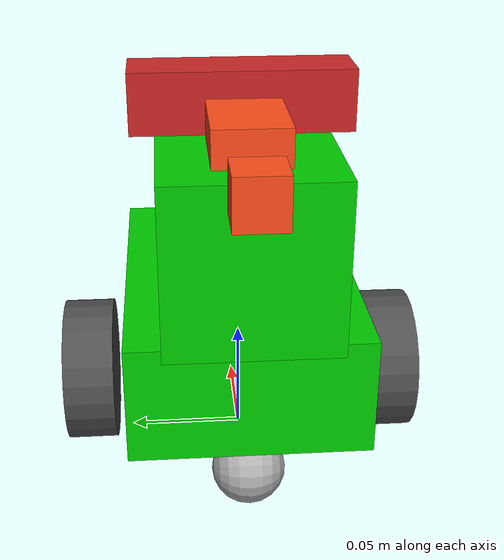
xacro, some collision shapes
<?xml version="1.0"?>
<robot xmlns:xacro="http://www.ros.org/wiki/xacro" name="jetbot_mirea">

    <!-- Массы и радиусы малых колес -->
    <xacro:property name="wheel_small_mass" value="0.05"/>
    <xacro:property name="wheel_small_radius" value="0.0155"/>

    <!-- Массы и радиусы больших колес -->
    <xacro:property name="wheel_big_mass" value="0.1"/>
    <xacro:property name="wheel_big_radius" value="0.032"/>
    <xacro:property name="wheel_big_width" value="0.022"/>
    <xacro:property name="wheel_big_gap_between_base" value="0.007"/>

    <xacro:property name="wheel_joint_damping" value="0.1"/>
    <xacro:property name="wheel_joint_friction" value="0.1"/>

    <!-- Параметры базы -->
    <xacro:property name="base_lenght" value="0.15"/>
    <xacro:property name="base_width" value="0.1"/>
    <xacro:property name="base_height" value="0.05"/>
    <xacro:property name="base_mass" value="1.0"/>

    <!-- Параметры вычислителя -->
    <xacro:property name="computer_lenght" value="0.07"/>
    <xacro:property name="computer_width" value="0.07"/>
    <xacro:property name="computer_height" value="0.07"/>
    <xacro:property name="computer_mass" value="0.5"/>

    <!-- Параметры лидара -->
    <xacro:property name="lidar_height" value="0.03"/>
    <xacro:property name="lidar_radius" value="0.07"/>
    <xacro:property name="lidar_mass" value="0.2"/>

    <!-- Параметры задней камеры -->
    <xacro:property name="back_camera_lenght" value="0.02"/>
    <xacro:property name="back_camera_width" value="0.02"/>
    <xacro:property name="back_camera_height" value="0.02"/>
    <xacro:property name="back_camera_mass" value="0.05"/>

    <!-- Параметры маяка marvelmind -->
    <xacro:property name="marvelmind_lenght" value="0.04"/>
    <xacro:property name="marvelmind_width" value="0.03"/>
    <xacro:property name="marvelmind_height" value="0.015"/>
    <xacro:property name="marvelmind_mass" value="0.05"/>

    <!-- "Импорты" модулей -->
    <xacro:include filename="$(find realsense_ros_gazebo)/xacro/depthcam.xacro"/>
    <xacro:include filename="$(find jetbot_mirea_description)/urdf/common_properties.xacro"/>
    <xacro:include filename="$(find jetbot_mirea_description)/urdf/gazebo_properties.xacro"/>

    <link name="base_footprint"/>

    <joint name="base_joint" type="fixed">
        <parent link="base_footprint"/>
        <child link="base_link"/>
        <origin xyz="0.0 0.0 ${wheel_big_radius + base_height/2}" rpy="0 0 0"/>
    </joint>

    <link name="base_link">
        <visual>
            <origin xyz="0.0 0.0 0.0" rpy="0 0 0"/>
            <geometry>
                <box size="${base_lenght} ${base_width} ${base_height}"/>
            </geometry>
            <material name="acid_green"/>
        </visual>

        <collision>
            <origin xyz="0.0 0.0 0.0" rpy="0 0 0"/>
            <geometry>
                <box size="${base_lenght} ${base_width} ${base_height}"/>
            </geometry>
        </collision>

        <xacro:inertial_box mass="${base_mass}" x="${base_lenght}" y="${base_width}" z="${base_height}">
            <origin xyz="0.0 0.0 0.0" rpy="0 0 0"/>
        </xacro:inertial_box>
    </link>

    <joint name="computer_joint" type="fixed">
        <parent link="base_link"/>
        <child link="computer_link"/>
        <origin xyz="-0.05 0.0 ${base_height/2 + computer_height/2}" rpy="0 0 0"/>
    </joint>

    <link name="computer_link">
        <visual>
            <origin xyz="0.0 0.0 0.0" rpy="0 0 0"/>
            <geometry>
                <box size="${computer_lenght} ${computer_width} ${computer_height}"/>
            </geometry>
            <material name="acid_green"/>
        </visual>

        <collision>
            <origin xyz="0.0 0.0 0.0" rpy="0 0 0"/>
            <geometry>
                <box size="${computer_lenght} ${computer_width} ${computer_height}"/>
            </geometry>
        </collision>

        <xacro:inertial_box mass="${computer_mass}" x="${computer_lenght}" y="${computer_width}" z="${computer_height}">
            <origin xyz="0.0 0.0 0.0" rpy="0 0 0"/>
        </xacro:inertial_box>
    </link>

    <!-- Фронтальная камера -->
    <xacro:realsense_d435 sensor_name="d435" parent_link="computer_link" rate="10">
    <origin xyz="${computer_lenght/2} 0.0 ${computer_height/2}" rpy="0 0 0"/>
    </xacro:realsense_d435>

    <!-- IMU-блок (вшит в камеру) -->
    <joint name="imu_joint" type="fixed">
        <parent link="d435_link"/>
        <child link="imu_link"/>
        <origin xyz="0.0 0.0 0.0" rpy="0 0 0 "/>
    </joint>

    <link name="imu_link"/>

    <!-- Задняя камера -->
    <joint name="back_camera_joint" type="fixed">
        <parent link="computer_link"/>
        <child link="back_camera_link"/>
        <origin xyz="-${computer_lenght/2 + back_camera_lenght/2} 0.0 ${computer_height/2}" rpy="0 0 3.14"/>
    </joint>

    <link name="back_camera_link">
        <visual>
            <origin xyz="0.0 0.0 0.0" rpy="0 0 0"/>
            <geometry>
                <box size="${back_camera_lenght} ${back_camera_width} ${back_camera_height}"/>
            </geometry>
            <material name="orange"/>
        </visual>

        <collision>
            <origin xyz="0.0 0.0 0.0" rpy="0 0 0"/>
            <geometry>
                <box size="${back_camera_lenght} ${back_camera_width} ${back_camera_height}"/>
            </geometry>
        </collision>

        <xacro:inertial_box mass="${back_camera_mass}" x="${back_camera_lenght}" y="${back_camera_width}" z="${back_camera_height}">
            <origin xyz="0.0 0.0 0.0" rpy="0 0 0"/>
        </xacro:inertial_box>
    </link>

    <!-- Маяк marvelmind -->
    <joint name="marvelmind_joint" type="fixed">
        <parent link="computer_link"/>
        <child link="marvelmind_link"/>
        <origin xyz="0.0 0.0 ${computer_height/2 + marvelmind_height/2}" rpy="0 0 0"/>
    </joint>

    <link name="marvelmind_link">
        <visual>
            <origin xyz="0.0 0.0 0.0" rpy="0 0 0"/>
            <geometry>
                <box size="${marvelmind_lenght} ${marvelmind_width} ${marvelmind_height}"/>
            </geometry>
            <material name="orange"/>
        </visual>

        <collision>
            <origin xyz="0.0 0.0 0.0" rpy="0 0 0"/>
            <geometry>
                <box size="${marvelmind_lenght} ${marvelmind_width} ${marvelmind_height}"/>
            </geometry>
        </collision>

        <xacro:inertial_box mass="${marvelmind_mass}" x="${marvelmind_lenght}" y="${marvelmind_width}" z="${marvelmind_height}">
            <origin xyz="0.0 0.0 0.0" rpy="0 0 0"/>
        </xacro:inertial_box>
    </link>

    <!-- Лидар -->
    <joint name="lidar_joint" type="fixed">
        <parent link="base_link"/>
        <child link="lidar_link"/>
        <origin xyz="0.07 0.0 ${base_height/2 + lidar_height/2}" rpy="0 0 0"/>  <!-- Поворот на -90° вокруг X -->

    </joint>

    <link name="lidar_link">
        <visual>
            <origin xyz="0.0 0 0" rpy="0 0 0"/>
            <geometry>
                <cylinder length="${lidar_height}" radius="${lidar_radius/2}"/>
            </geometry>
            <material name="orange"/>
        </visual>

        <collision>
            <origin xyz="0 0 0" rpy="0 0 0"/>
            <geometry>
                <cylinder length="${lidar_height}" radius="${lidar_radius/2}"/>
            </geometry>
        </collision>

        <xacro:inertial_cylinder mass="${lidar_mass}" length="${lidar_height}" radius="${lidar_radius}">
            <origin xyz="0.0 0.0 0.0" rpy="0.0 0.0 0.0"/>
        </xacro:inertial_cylinder>
    </link>

    <!-- Основные приводные колеса -->

    <!-- Левое большое колесо -->
    <joint name="wheel_left_joint" type="continuous">
        <axis xyz="0 0 1"/>
        <origin xyz="0.0 ${base_width/2 + wheel_big_width/2 + wheel_big_gap_between_base} ${-base_height/2}" rpy="-1.57 0 0"/>  <!-- Поворот на -90° вокруг X -->
        <parent link="base_link"/>
        <child link="wheel_left_link"/>
        <dynamics damping="${wheel_joint_damping}" friction="${wheel_joint_friction}"/>
        <limit effort="100" velocity="100"/>
    </joint>

    <link name="wheel_left_link">
        <visual>
            <origin xyz="0 0 0" rpy="0 0 0"/>
            <geometry>
                <cylinder length="${wheel_big_width}" radius="${wheel_big_radius}"/>
            </geometry>
            <material name="dark"/>
        </visual>

        <collision>
            <origin xyz="0 0 0" rpy="0 0 0"/>
            <geometry>
                <cylinder length="${wheel_big_width}" radius="${wheel_big_radius}"/>
            </geometry>
        </collision>

        <xacro:inertial_cylinder mass="${wheel_big_mass}" length="${wheel_big_width}" radius="${wheel_big_radius}">
            <origin xyz="0.0 0.0 0.0" rpy="0.0 0.0 0.0"/>
        </xacro:inertial_cylinder>
    </link>

    <!-- Правое большое колесо -->
    <joint name="wheel_right_joint" type="continuous">
        <parent link="base_link"/>
        <child link="wheel_right_link"/>
        <origin xyz="0.0 -${base_width/2 + wheel_big_width/2 + wheel_big_gap_between_base} ${-base_height/2}" rpy="-1.57 0 0"/>  <!-- Поворот на -90° вокруг X -->
        <axis xyz="0 0 1"/>
        <dynamics damping="${wheel_joint_damping}" friction="${wheel_joint_friction}"/>
        <limit effort="100" velocity="100"/>
    </joint>

    <link name="wheel_right_link">
        <visual>
            <origin xyz="0.0 0 0" rpy="0 0 0"/>
            <geometry>
                <cylinder length="${wheel_big_width}" radius="${wheel_big_radius}"/>
            </geometry>
            <material name="dark"/>
        </visual>

        <collision>
            <origin xyz="0 0 0" rpy="0 0 0"/>
            <geometry>
                <cylinder length="${wheel_big_width}" radius="${wheel_big_radius}"/>
            </geometry>
        </collision>

        <xacro:inertial_cylinder mass="${wheel_big_mass}" length="${wheel_big_width}" radius="${wheel_big_radius}">
            <origin xyz="0.0 0.0 0.0" rpy="0.0 0.0 0.0"/>
        </xacro:inertial_cylinder>
    </link>

    <!-- ПЕРЕДНЕЕ РОЛИКОВОЕ КОЛЕСО (свободное вращение по 3 степеням свободы) -->

    <joint name="wheel_forward_roll_joint" type="continuous">
        <parent link="base_link"/>
        <child link="wheel_forward_roll_link"/>
        <origin xyz="${base_lenght/2 - wheel_small_radius} 0.0 -${base_height/2 + wheel_small_radius + 0.001}" rpy="0 0 0"/>
        <axis xyz="1 0 0"/>  <!-- Ось вращения X - для свободного вращения -->
        <dynamics damping="0.01" friction="0.01"/>  <!-- Меньше демпфирование для свободного вращения -->
        <limit effort="0.1" velocity="100"/>
    </joint>

    <joint name="wheel_forward_pitch_joint" type="continuous">
        <parent link="wheel_forward_roll_link"/>
        <child link="wheel_forward_pitch_link"/>
        <origin xyz="0 0 0" rpy="0 0 0"/>
        <axis xyz="0 1 0"/> <!-- Ось вращения (Pitch) -->
        <dynamics damping="0.01" friction="0.01"/>  <!-- Меньше демпфирование для свободного вращения -->
        <limit effort="0.1" velocity="100"/>
    </joint>

    <joint name="wheel_forward_yaw_joint" type="continuous">
        <parent link="wheel_forward_pitch_link"/>
        <child link="wheel_forward_yaw_link"/>
        <origin xyz="0 0 0" rpy="0 0 0"/>
        <axis xyz="0 0 1"/> <!-- Ось вращения (Yaw) -->
        <dynamics damping="0.01" friction="0.01"/>  <!-- Меньше демпфирование для свободного вращения -->
        <limit effort="0.1" velocity="100"/>
    </joint>

    <joint name="wheel_forward_joint" type="fixed">
        <parent link="wheel_forward_yaw_link"/>
        <child link="wheel_forward_link"/>
        <origin xyz="0.0 0.0 0.0" rpy="0 0 0 "/>
    </joint>

    <!-- Вспомогательные звенья -->
    <link name="wheel_forward_roll_link">
        <xacro:inertial_sphere mass="${wheel_small_mass}" radius="${wheel_small_radius}">
            <origin xyz="0.0 0.0 0.0" rpy="0.0 0.0 0.0"/>
        </xacro:inertial_sphere>
    </link>
    <link name="wheel_forward_pitch_link">
        <xacro:inertial_sphere mass="${wheel_small_mass}" radius="${wheel_small_radius}">
            <origin xyz="0.0 0.0 0.0" rpy="0.0 0.0 0.0"/>
        </xacro:inertial_sphere>
    </link>
    <link name="wheel_forward_yaw_link">
        <xacro:inertial_sphere mass="${wheel_small_mass}" radius="${wheel_small_radius}">
            <origin xyz="0.0 0.0 0.0" rpy="0.0 0.0 0.0"/>
        </xacro:inertial_sphere>
    </link>

    <link name="wheel_forward_link">
        <visual>
            <origin xyz="0.0 0 0" rpy="1.5708 0 0"/>  <!-- Повернуть на 90° чтобы колесо лежало -->
            <geometry>
                <sphere radius="${wheel_small_radius}"/>
            </geometry>
            <material name="silver"/>
        </visual>

        <collision>
            <origin xyz="0 0 0" rpy="1.5708 0 0"/>
            <geometry>
                <sphere radius="${wheel_small_radius}"/>
            </geometry>
        </collision>

        <xacro:inertial_sphere mass="${wheel_small_mass}" radius="${wheel_small_radius}">
            <origin xyz="0.0 0.0 0.0" rpy="0.0 0.0 0.0"/>
        </xacro:inertial_sphere>
    </link>

    <!-- ЗАДНЕЕ РОЛИКОВОЕ КОЛЕСО (свободное вращение по 3 степеням свободы) -->
    <joint name="wheel_backward_roll_joint" type="continuous">
        <parent link="base_link"/>
        <child link="wheel_backward_roll_link"/>
        <origin xyz="-${base_lenght/2 - wheel_small_radius} 0.0 -${base_height/2 + wheel_small_radius + 0.001}" rpy="0 0 0"/>
        <axis xyz="1 0 0"/>  <!-- Ось вращения X - для свободного вращения -->
        <dynamics damping="0.01" friction="0.01"/>  <!-- Меньше демпфирование для свободного вращения -->
        <limit effort="0.1" velocity="100"/>
    </joint>

        <joint name="wheel_backward_pitch_joint" type="continuous">
        <parent link="wheel_backward_roll_link"/>
        <child link="wheel_backward_pitch_link"/>
        <origin xyz="0 0 0" rpy="0 0 0"/>
        <axis xyz="0 1 0"/> <!-- Ось вращения (Pitch) -->
        <dynamics damping="0.01" friction="0.01"/>  <!-- Меньше демпфирование для свободного вращения -->
        <limit effort="0.1" velocity="100"/>
    </joint>

    <joint name="wheel_backward_yaw_joint" type="continuous">
        <parent link="wheel_backward_pitch_link"/>
        <child link="wheel_backward_yaw_link"/>
        <origin xyz="0 0 0" rpy="0 0 0"/>
        <axis xyz="0 0 1"/> <!-- Ось вращения (Yaw) -->
        <dynamics damping="0.01" friction="0.01"/>  <!-- Меньше демпфирование для свободного вращения -->
        <limit effort="0.1" velocity="100"/>
    </joint>

    <joint name="wheel_backward_joint" type="fixed">
        <parent link="wheel_backward_yaw_link"/>
        <child link="wheel_backward_link"/>
        <origin xyz="0.0 0.0 0.0" rpy="0 0 0 "/>
    </joint>

    <!-- Вспомогательные звенья -->
    <link name="wheel_backward_roll_link">
        <xacro:inertial_sphere mass="${wheel_small_mass}" radius="${wheel_small_radius}">
            <origin xyz="0.0 0.0 0.0" rpy="0.0 0.0 0.0"/>
        </xacro:inertial_sphere>
    </link>
    <link name="wheel_backward_pitch_link">
        <xacro:inertial_sphere mass="${wheel_small_mass}" radius="${wheel_small_radius}">
            <origin xyz="0.0 0.0 0.0" rpy="0.0 0.0 0.0"/>
        </xacro:inertial_sphere>
    </link>
    <link name="wheel_backward_yaw_link">
        <xacro:inertial_sphere mass="${wheel_small_mass}" radius="${wheel_small_radius}">
            <origin xyz="0.0 0.0 0.0" rpy="0.0 0.0 0.0"/>
        </xacro:inertial_sphere>
    </link>

    <link name="wheel_backward_link">
        <visual>
            <origin xyz="0.0 0 0" rpy="1.5708 0 0"/>  <!-- Повернуть на 90° чтобы колесо лежало -->
            <geometry>
                <sphere radius="${wheel_small_radius}"/>
            </geometry>
            <material name="silver"/>
        </visual>

        <collision>
            <origin xyz="0 0 0" rpy="1.5708 0 0"/>
            <geometry>
                <sphere radius="${wheel_small_radius}"/>
            </geometry>
        </collision>

        <xacro:inertial_sphere mass="${wheel_small_mass}" radius="${wheel_small_radius}">
            <origin xyz="0.0 0.0 0.0" rpy="0.0 0.0 0.0"/>
        </xacro:inertial_sphere>
    </link>

</robot>

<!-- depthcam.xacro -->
<robot xmlns:xacro="http://www.ros.org/wiki/xacro">

  <xacro:include filename="$(find realsense_ros_gazebo)/xacro/inertia_calc.xacro"/>

  <!-- INTEL REALSENSE D435 -->

  <xacro:macro name="realsense_d435" params="sensor_name parent_link *origin rate">

    <xacro:property name="d435_cam_depth_to_left_ir_offset" value="0.0"/>
    <xacro:property name="d435_cam_depth_to_right_ir_offset" value="-0.050"/>
    <xacro:property name="d435_cam_depth_to_color_offset" value="0.015"/>
    <xacro:property name="d435_cam_width" value="0.090"/>
    <xacro:property name="d435_cam_height" value="0.025"/>
    <xacro:property name="d435_cam_depth" value="0.02505"/>
    <xacro:property name="d435_cam_mass" value="0.072"/>
    <xacro:property name="d435_cam_mount_from_center_offset" value="0.0149"/>
    <xacro:property name="d435_cam_depth_px" value="${d435_cam_mount_from_center_offset}"/>
    <xacro:property name="d435_cam_depth_py" value="0.0175"/>
    <xacro:property name="d435_cam_depth_pz" value="${d435_cam_height/2}"/>

    <!-- camera body, with origin at bottom screw mount -->
    <joint name="${sensor_name}_joint" type="fixed">
      <xacro:insert_block name="origin" />
      <parent link="${parent_link}"/>
      <child link="${sensor_name}_bottom_screw_frame" />
    </joint>
    <link name="${sensor_name}_bottom_screw_frame"/>

    <joint name="${sensor_name}_link_joint" type="fixed">
      <origin xyz="0 ${d435_cam_depth_py} ${d435_cam_depth_pz}" rpy="0 0 0"/>
      <parent link="${sensor_name}_bottom_screw_frame"/>
      <child link="${sensor_name}_link" />
    </joint>

    <link name="${sensor_name}_link">
      <visual>
        <origin xyz="${d435_cam_mount_from_center_offset} ${-d435_cam_depth_py} 0" rpy="${pi/2} 0 ${pi/2}"/>
        <geometry>
          <mesh filename="file://$(find realsense_ros_gazebo)/meshes/realsense_d435.stl" />
        </geometry>
      </visual>
      <collision>
        <origin xyz="0 ${-d435_cam_depth_py} 0" rpy="0 0 0"/>
        <geometry>
          <box size="${d435_cam_depth} ${d435_cam_width} ${d435_cam_height}"/>
        </geometry>
      </collision>
      <inertial>
        <mass value="${d435_cam_mass}" />
        <origin xyz="0 ${-d435_cam_depth_py} 0" rpy="0 0 0"/>
        <xacro:box_inertia m="${d435_cam_mass}" x="${d435_cam_depth}" y="${d435_cam_width}" z="${d435_cam_height}"/>
      </inertial>
    </link>

    <!-- camera depth joints and links -->
    <joint name="${sensor_name}_depth_joint" type="fixed">
      <origin xyz="0 0 0" rpy="0 0 0"/>
      <parent link="${sensor_name}_link"/>
      <child link="${sensor_name}_depth_frame" />
    </joint>
    <link name="${sensor_name}_depth_frame"/>

    <joint name="${sensor_name}_depth_optical_joint" type="fixed">
      <origin xyz="0 0 0" rpy="${-pi/2} 0 ${-pi/2}" />
      <parent link="${sensor_name}_depth_frame" />
      <child link="${sensor_name}_depth_optical_frame" />
    </joint>
    <link name="${sensor_name}_depth_optical_frame"/>

    <!-- camera left IR joints and links -->
    <joint name="${sensor_name}_left_ir_joint" type="fixed">
      <origin xyz="0 ${d435_cam_depth_to_left_ir_offset} 0" rpy="0 0 0" />
      <parent link="${sensor_name}_depth_frame" />
      <child link="${sensor_name}_left_ir_frame" />
    </joint>
    <link name="${sensor_name}_left_ir_frame"/>

    <joint name="${sensor_name}_left_ir_optical_joint" type="fixed">
      <origin xyz="0 0 0" rpy="${-pi/2} 0 ${-pi/2}" />
      <parent link="${sensor_name}_left_ir_frame" />
      <child link="${sensor_name}_left_ir_optical_frame" />
    </joint>
    <link name="${sensor_name}_left_ir_optical_frame"/>

    <!-- camera right IR joints and links -->
    <joint name="${sensor_name}_right_ir_joint" type="fixed">
      <origin xyz="0 ${d435_cam_depth_to_right_ir_offset} 0" rpy="0 0 0" />
      <parent link="${sensor_name}_depth_frame" />
      <child link="${sensor_name}_right_ir_frame" />
    </joint>
    <link name="${sensor_name}_right_ir_frame"/>

    <joint name="${sensor_name}_right_ir_optical_joint" type="fixed">
      <origin xyz="0 0 0" rpy="${-pi/2} 0 ${-pi/2}" />
      <parent link="${sensor_name}_right_ir_frame" />
      <child link="${sensor_name}_right_ir_optical_frame" />
    </joint>
    <link name="${sensor_name}_right_ir_optical_frame"/>

    <!-- camera color joints and links -->
    <joint name="${sensor_name}_color_joint" type="fixed">
      <origin xyz="0 ${d435_cam_depth_to_color_offset} 0" rpy="0 0 0" />
      <parent link="${sensor_name}_depth_frame" />
      <child link="${sensor_name}_color_frame" />
    </joint>
    <link name="${sensor_name}_color_frame"/>

    <joint name="${sensor_name}_color_optical_joint" type="fixed">
      <origin xyz="0 0 0" rpy="${-pi/2} 0 ${-pi/2}" />
      <parent link="${sensor_name}_color_frame" />
      <child link="${sensor_name}_color_optical_frame" />
    </joint>
    <link name="${sensor_name}_color_optical_frame"/>

    <!-- gazebo plugin -->

    <xacro:property name="deg_to_rad" value="0.01745329251994329577" />

    <gazebo reference="${sensor_name}_link">
      <self_collide>0</self_collide>
      <enable_wind>0</enable_wind>
      <kinematic>0</kinematic>
      <gravity>1</gravity>
      <mu2>1</mu2>
      <fdir1>0 0 0</fdir1>
      <kp>1e+13</kp>
      <kd>1</kd>

      <sensor name="${sensor_name}_color" type="camera">
        <camera name="${sensor_name}">
          <horizontal_fov>${69.4*deg_to_rad}</horizontal_fov>
          <image>
            <width>640</width>
            <height>480</height>
            <format>RGB_INT8</format>
          </image>
          <clip>
            <near>0.1</near>
            <far>100</far>
          </clip>
          <noise>
            <type>gaussian</type>
            <mean>0.0</mean>
            <stddev>0.007</stddev>
          </noise>
        </camera>
        <always_on>1</always_on>
        <update_rate>30</update_rate>
        <visualize>1</visualize>
      </sensor>
      <sensor name="${sensor_name}_ired1" type="camera">
        <camera name="${sensor_name}">
          <horizontal_fov>${85.2*deg_to_rad}</horizontal_fov>
          <image>
            <width>1280</width>
            <height>720</height>
            <format>L_INT8</format>
          </image>
          <clip>
            <near>0.1</near>
            <far>100</far>
          </clip>
          <noise>
            <type>gaussian</type>
            <mean>0.0</mean>
            <stddev>0.05</stddev>
          </noise>
        </camera>
        <always_on>1</always_on>
        <update_rate>90</update_rate>
        <visualize>0</visualize>
      </sensor>
      <sensor name="${sensor_name}_ired2" type="camera">
        <camera name="${sensor_name}">
          <horizontal_fov>${85.2*deg_to_rad}</horizontal_fov>
          <image>
            <width>1280</width>
            <height>720</height>
            <format>L_INT8</format>
          </image>
          <clip>
            <near>0.1</near>
            <far>100</far>
          </clip>
          <noise>
            <type>gaussian</type>
            <mean>0.0</mean>
            <stddev>0.05</stddev>
          </noise>
        </camera>
        <always_on>1</always_on>
        <update_rate>90</update_rate>
        <visualize>0</visualize>
      </sensor>
      <sensor name="${sensor_name}_depth" type="depth">
        <camera name="${sensor_name}">
          <horizontal_fov>${85.2*deg_to_rad}</horizontal_fov>
          <image>
            <width>1280</width>
            <height>720</height>
          </image>
          <clip>
            <near>0.1</near>
            <far>100</far>
          </clip>
          <noise>
            <type>gaussian</type>
            <mean>0.0</mean>
            <stddev>0.100</stddev>
          </noise>
        </camera>
        <always_on>1</always_on>
        <update_rate>90</update_rate>
        <visualize>0</visualize>
      </sensor>
    </gazebo>

    <gazebo>
      <plugin name="${sensor_name}" filename="librealsense_gazebo_plugin.so">
        <prefix>${sensor_name}_</prefix>
        <depthUpdateRate>${rate}</depthUpdateRate>
        <colorUpdateRate>${rate}</colorUpdateRate>
        <infraredUpdateRate>${rate}</infraredUpdateRate>
        <depthTopicName>depth/image_raw</depthTopicName>
        <depthCameraInfoTopicName>depth/camera_info</depthCameraInfoTopicName>
        <colorTopicName>color/image_raw</colorTopicName>
        <colorCameraInfoTopicName>color/camera_info</colorCameraInfoTopicName>
        <infrared1TopicName>infra1/image_raw</infrared1TopicName>
        <infrared1CameraInfoTopicName>infra1/camera_info</infrared1CameraInfoTopicName>
        <infrared2TopicName>infra2/image_raw</infrared2TopicName>
        <infrared2CameraInfoTopicName>infra2/camera_info</infrared2CameraInfoTopicName>
        <colorOpticalframeName>${sensor_name}_color_optical_frame</colorOpticalframeName>
        <depthOpticalframeName>${sensor_name}_depth_optical_frame</depthOpticalframeName>
        <infrared1OpticalframeName>${sensor_name}_infrared1_optical_frame</infrared1OpticalframeName>
        <infrared2OpticalframeName>${sensor_name}_infrared2_optical_frame</infrared2OpticalframeName>
        <rangeMinDepth>0.2</rangeMinDepth>
        <rangeMaxDepth>10.0</rangeMaxDepth>
        <pointCloud>true</pointCloud>
        <pointCloudTopicName>depth/color/points</pointCloudTopicName>
        <pointCloudCutoff>0.25</pointCloudCutoff>
        <pointCloudCutoffMax>9.0</pointCloudCutoffMax>
      </plugin>
    </gazebo>

  </xacro:macro>

  <!-- INTEL REALSENSE R200 -->

  <xacro:macro name="realsense_R200" params="sensor_name parent_link rate *origin">

      <link name="${sensor_name}_R200_camera">
          <visual>
              <origin rpy="0 0 0" xyz="0 0 0"/>
              <geometry>
                  <mesh filename="file://$(find realsense_ros_gazebo)/meshes/realsense_r200/meshes/realsense.dae"/>
              </geometry>
          </visual>
          <collision>
              <geometry>
                  <box size="0.0078 0.130 0.0192"/>
              </geometry>
          </collision>
          <inertial>
              <mass value="0.0615752"/>
              <origin rpy="0 0 0" xyz="0 0 0"/>
              <inertia ixx="9.108e-05"
                       ixy="0"
                       ixz="0"
                       iyy="2.51e-06"
                       iyz="0"
                       izz="8.931e-05"/>
          </inertial>
      </link>

      <joint name="${sensor_name}_joint" type="fixed">
          <parent link="${parent_link}"/>
          <child link="${sensor_name}_R200_camera"/>
          <xacro:insert_block name="origin"/>
      </joint>

      <link name="${sensor_name}_color" />
      <link name="${sensor_name}_depth" />
      <link name="${sensor_name}_ired1" />
      <link name="${sensor_name}_ired2" />

      <joint name="${sensor_name}_color_joint" type="fixed">
          <parent link="${sensor_name}_R200_camera" />
          <child link="${sensor_name}_color" />
          <origin xyz="0 -0.046 0.004" rpy="${pi/2} ${pi} ${pi/2}"/>
      </joint>

      <joint name="${sensor_name}_depth_joint" type="fixed">
          <parent link="${sensor_name}_R200_camera" />
          <child link="${sensor_name}_depth" />
          <origin xyz="0 -0.03 0.004" rpy="0 0 0"/>
      </joint>

      <joint name="${sensor_name}_ired1_joint" type="fixed">
          <parent link="${sensor_name}_R200_camera" />
          <child link="${sensor_name}_ired1" />
          <origin xyz="0 -0.06 0.004" rpy="0 0 0"/>
      </joint>

      <joint name="${sensor_name}_ired2_joint" type="fixed">
          <parent link="${sensor_name}_R200_camera" />
          <child link="${sensor_name}_ired2" />
          <origin xyz="0 0.01 0.004" rpy="0 0 0"/>
      </joint>

      <gazebo reference="${sensor_name}_R200_camera">

          <self_collide>0</self_collide>
          <enable_wind>0</enable_wind>
          <kinematic>0</kinematic>
          <gravity>1</gravity>
          <mu>1</mu>
          <mu2>1</mu2>
          <fdir1>0 0 0</fdir1>
          <slip1>0</slip1>
          <slip2>0</slip2>
          <kp>1e+13</kp>
          <kd>1</kd>
          <max_vel>0.01</max_vel>
          <min_depth>0</min_depth>

          <sensor name="${sensor_name}_color" type="camera">
              <pose frame="">0 -0.046 0.004 0 0 0</pose>
              <camera name="${sensor_name}_R200_camera">
              <horizontal_fov>1.047</horizontal_fov>
              <image>
                  <width>640</width>
                  <height>480</height>
                  <format>RGB_INT8</format>
              </image>
              <clip>
                  <near>0.1</near>
                  <far>100</far>
              </clip>
              <noise>
                  <type>gaussian</type>
                  <mean>0.0</mean>
                  <stddev>0.007</stddev>
              </noise>
              </camera>
              <always_on>1</always_on>
              <update_rate>${rate}</update_rate>
              <visualize>1</visualize>
          </sensor>
          <sensor name="${sensor_name}_ired1" type="camera">
              <pose frame="">0 -0.06 0.004 0 0 0</pose>
              <camera name="${sensor_name}_R200_camera">
              <horizontal_fov>1.047</horizontal_fov>
              <image>
                  <width>640</width>
                  <height>480</height>
                  <format>L_INT8</format>
              </image>
              <clip>
                  <near>0.1</near>
                  <far>100</far>
              </clip>
              <noise>
                  <type>gaussian</type>
                  <mean>0.0</mean>
                  <stddev>0.05</stddev>
              </noise>
              </camera>
              <always_on>1</always_on>
              <update_rate>${rate}</update_rate>
              <visualize>0</visualize>
          </sensor>
          <sensor name="${sensor_name}_ired2" type="camera">
              <pose frame="">0 0.01 0.004 0 0 0</pose>
              <camera name="${sensor_name}_R200_camera">
              <horizontal_fov>1.047</horizontal_fov>
              <image>
                  <width>640</width>
                  <height>480</height>
                  <format>L_INT8</format>
              </image>
              <clip>
                  <near>0.1</near>
                  <far>100</far>
              </clip>
              <noise>
                  <type>gaussian</type>
                  <mean>0.0</mean>
                  <stddev>0.05</stddev>
              </noise>
              </camera>
              <always_on>1</always_on>
              <update_rate>${rate}</update_rate>
              <visualize>0</visualize>
          </sensor>
          <sensor name="${sensor_name}_depth" type="depth">
              <pose frame="">0 -0.03 0.004 0 0 0</pose>
              <camera name="${sensor_name}_R200_camera">
              <horizontal_fov>1.047</horizontal_fov>
              <image>
                      <width>640</width>
                      <height>480</height>
              </image>
              <clip>
                      <near>0.1</near>
                      <far>100</far>
              </clip>
              <noise>
                      <type>gaussian</type>
                      <mean>0.0</mean>
                      <stddev>0.100</stddev>
              </noise>
              </camera>
              <always_on>1</always_on>
              <update_rate>60</update_rate>
              <visualize>0</visualize>
          </sensor>
      </gazebo>

      <gazebo>
        <plugin name="${sensor_name}" filename="librealsense_gazebo_plugin.so">
          <prefix>${sensor_name}_</prefix>
          <depthUpdateRate>${rate}</depthUpdateRate>
          <colorUpdateRate>${rate}</colorUpdateRate>
          <infraredUpdateRate>${rate}</infraredUpdateRate>
          <depthTopicName>depth/image_raw</depthTopicName>
          <depthCameraInfoTopicName>depth/camera_info</depthCameraInfoTopicName>
          <colorTopicName>color/image_raw</colorTopicName>
          <colorCameraInfoTopicName>color/camera_info</colorCameraInfoTopicName>
          <infrared1TopicName>infra1/image_raw</infrared1TopicName>
          <infrared1CameraInfoTopicName>infra1/camera_info</infrared1CameraInfoTopicName>
          <infrared2TopicName>infra2/image_raw</infrared2TopicName>
          <infrared2CameraInfoTopicName>infra2/camera_info</infrared2CameraInfoTopicName>
          <colorOpticalframeName>${sensor_name}_color_optical_frame</colorOpticalframeName>
          <depthOpticalframeName>${sensor_name}_depth_optical_frame</depthOpticalframeName>
          <infrared1OpticalframeName>${sensor_name}_infrared1_optical_frame</infrared1OpticalframeName>
          <infrared2OpticalframeName>${sensor_name}_infrared2_optical_frame</infrared2OpticalframeName>
          <rangeMinDepth>0.2</rangeMinDepth>
          <rangeMaxDepth>10.0</rangeMaxDepth>
          <pointCloud>false</pointCloud>
          <pointCloudTopicName>depth/color/points</pointCloudTopicName>
          <pointCloudCutoff>0.25</pointCloudCutoff>
          <pointCloudCutoffMax>9.0</pointCloudCutoffMax>
        </plugin>
      </gazebo>

  </xacro:macro>

</robot>

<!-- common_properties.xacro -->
<robot xmlns:xacro="http://www.ros.org/wiki/xacro" >

    <!-- This file is not a robot in and of itself, it just contains some useful tags that could be included in any robot -->
    <!-- Specify some colours -->

    <material name="white">
        <color rgba="1 1 1 1"/>
    </material>

    <material name="orange">
        <color rgba="1 0.3 0.1 1"/>
    </material>

    <material name="blue">
        <color rgba="0.2 0.2 1 1"/>
    </material>

    <material name="acid_green">
        <color rgba="0.0 0.8 0.0 1.0"/>
    </material>

    <material name="dark">
        <color rgba="0.3 0.3 0.3 1.0"/>
    </material>

    <material name="black">
        <color rgba="0.0 0.0 0.0 1" />
    </material>

    <material name="silver">
        <color rgba="0.67 0.67 0.67 1.0" />
    </material>

    <!-- Specify some standard inertial calculations https://en.wikipedia.org/wiki/List_of_moments_of_inertia -->
    <!-- These make use of xacro's mathematical functionality -->

    <xacro:macro name="inertial_sphere" params="mass radius *origin">
        <inertial>
            <xacro:insert_block name="origin"/>
            <mass value="${mass}" />
            <inertia ixx="${(2/5) * mass * (radius*radius)}" ixy="0.0" ixz="0.0"
                    iyy="${(2/5) * mass * (radius*radius)}" iyz="0.0"
                    izz="${(2/5) * mass * (radius*radius)}" />
        </inertial>
    </xacro:macro>

    <xacro:macro name="inertial_box" params="mass x y z *origin">
        <inertial>
            <xacro:insert_block name="origin"/>
            <mass value="${mass}" />
            <inertia ixx="${(1/12) * mass * (y*y+z*z)}" ixy="0.0" ixz="0.0"
                    iyy="${(1/12) * mass * (x*x+z*z)}" iyz="0.0"
                    izz="${(1/12) * mass * (x*x+y*y)}" />
        </inertial>
    </xacro:macro>

    <xacro:macro name="inertial_cylinder" params="mass length radius *origin">
        <inertial>
            <xacro:insert_block name="origin"/>
            <mass value="${mass}" />
            <inertia ixx="${(1/12) * mass * (3*radius*radius + length*length)}" ixy="0.0" ixz="0.0"
                    iyy="${(1/12) * mass * (3*radius*radius + length*length)}" iyz="0.0"
                    izz="${(1/2) * mass * (radius*radius)}" />
        </inertial>
    </xacro:macro>

</robot>
